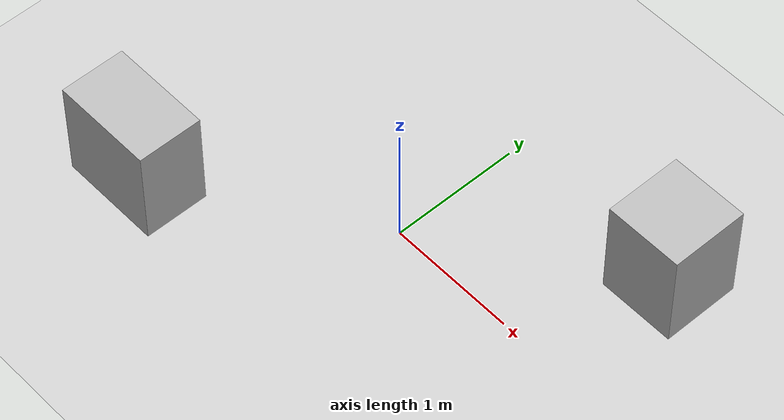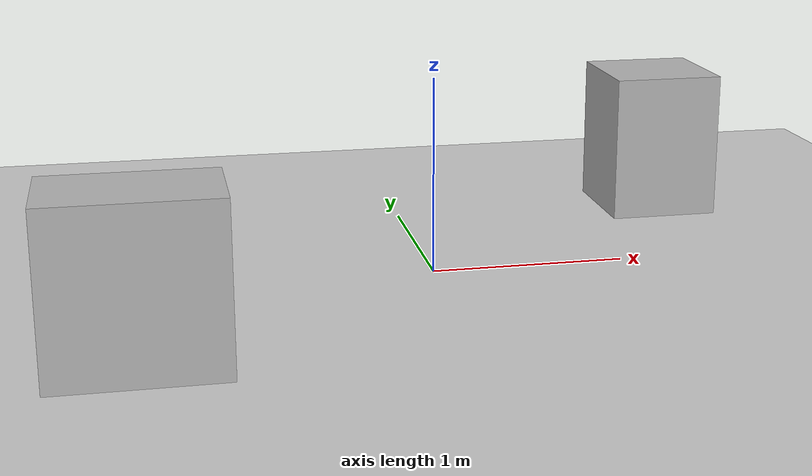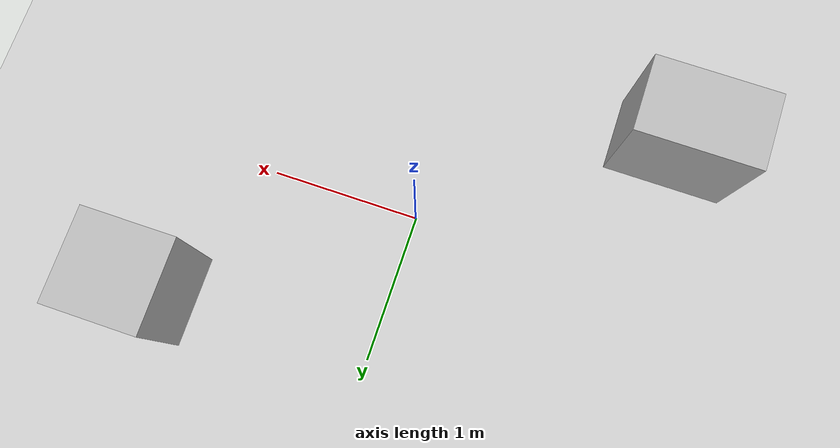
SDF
<?xml version="1.0" ?>
<sdf version="1.9">
  <world name="empty">

    <plugin
      filename="gz-sim-physics-system"
      name="gz::sim::systems::Physics"/>

    <plugin
      filename="gz-sim-user-commands-system"
      name="gz::sim::systems::UserCommands"/>

    <plugin
      filename="gz-sim-scene-broadcaster-system"
      name="gz::sim::systems::SceneBroadcaster"/>

    <plugin
      filename="gz-sim-sensors-system"
      name="gz::sim::systems::Sensors">
      <render_engine>ogre2</render_engine>
    </plugin>

    <light name="sun" type="directional">
      <cast_shadows>true</cast_shadows>
      <pose>0 0 10 0 0 0</pose>
      <diffuse>0.8 0.8 0.8 1</diffuse>
      <specular>0.2 0.2 0.2 1</specular>
      <attenuation>
        <range>1000</range>
        <constant>0.9</constant>
        <linear>0.01</linear>
        <quadratic>0.001</quadratic>
      </attenuation>
      <direction>-0.5 0.1 -0.9</direction>
    </light>

    <model name="ground_plane">
      <static>true</static>
      <link name="link">
        <collision name="collision">
          <geometry>
            <plane>
              <normal>0 0 1</normal>
              <size>100 100</size>
            </plane>
          </geometry>
        </collision>
        <visual name="visual">
          <geometry>
            <plane>
              <normal>0 0 1</normal>
              <size>100 100</size>
            </plane>
          </geometry>
          <material>
            <ambient>0.8 0.8 0.8 1</ambient>
            <diffuse>0.8 0.8 0.8 1</diffuse>
          </material>
        </visual>
      </link>
    </model>

    <!-- Box obstacle 1 -->
    <model name="box_obstacle_1">
      <static>true</static>
      <pose>1.5 1.0 0.4 0 0 0</pose>
      <link name="link">
        <collision name="collision">
          <geometry>
            <box>
              <size>0.6 0.6 0.8</size>
            </box>
          </geometry>
        </collision>
        <visual name="visual">
          <geometry>
            <box>
              <size>0.6 0.6 0.8</size>
            </box>
          </geometry>
        </visual>
      </link>
    </model>

    <!-- Box obstacle 2 -->
    <model name="box_obstacle_2">
      <static>true</static>
      <pose>-1.5 -1.0 0.4 0 0 0</pose>
      <link name="link">
        <collision name="collision">
          <geometry>
            <box>
              <size>0.8 0.5 0.8</size>
            </box>
          </geometry>
        </collision>
        <visual name="visual">
          <geometry>
            <box>
              <size>0.8 0.5 0.8</size>
            </box>
          </geometry>
        </visual>
      </link>
    </model>

  </world>
</sdf>
